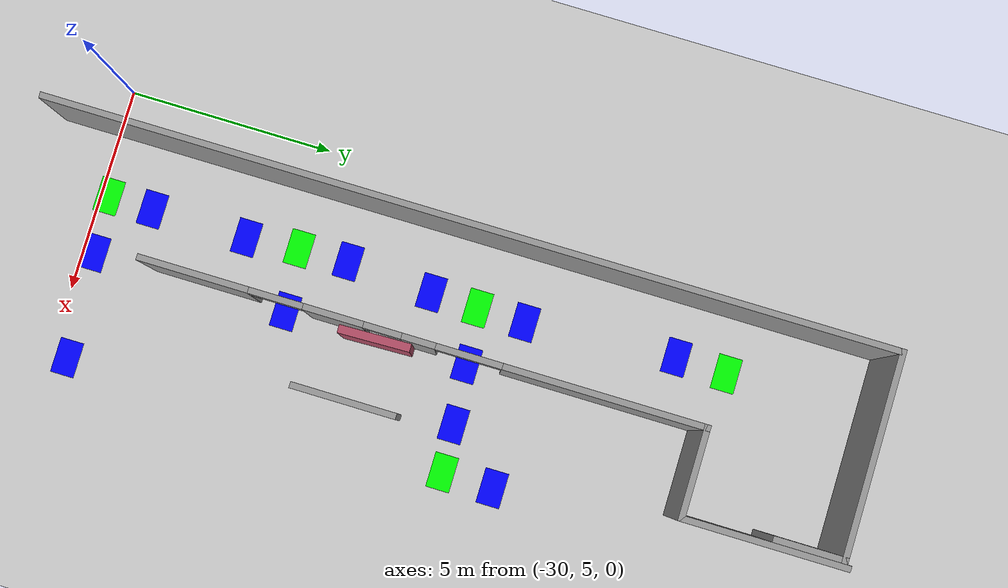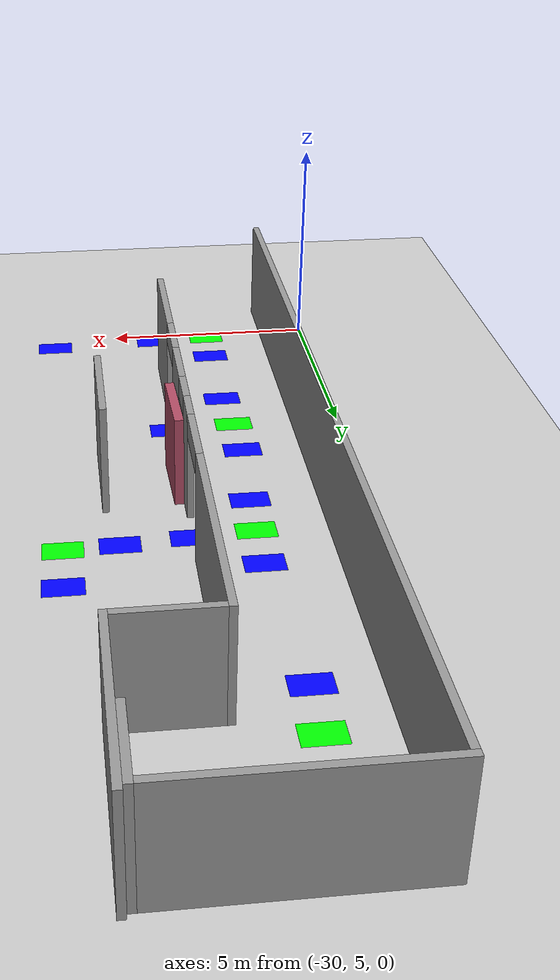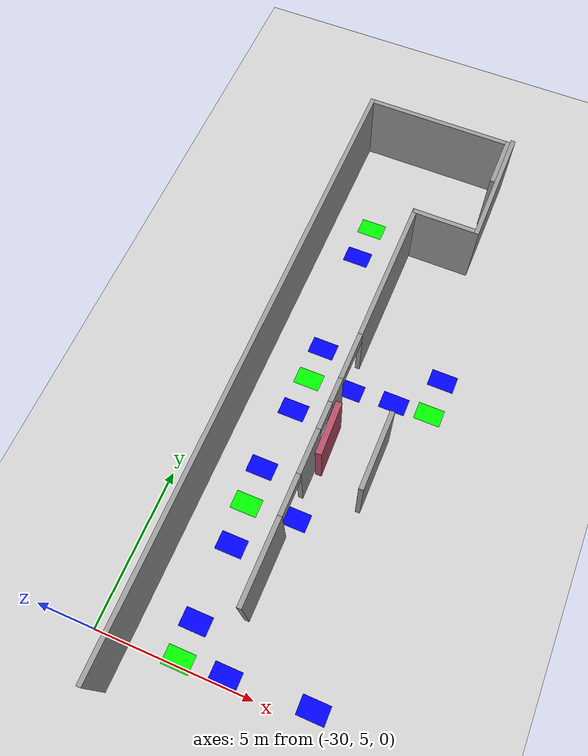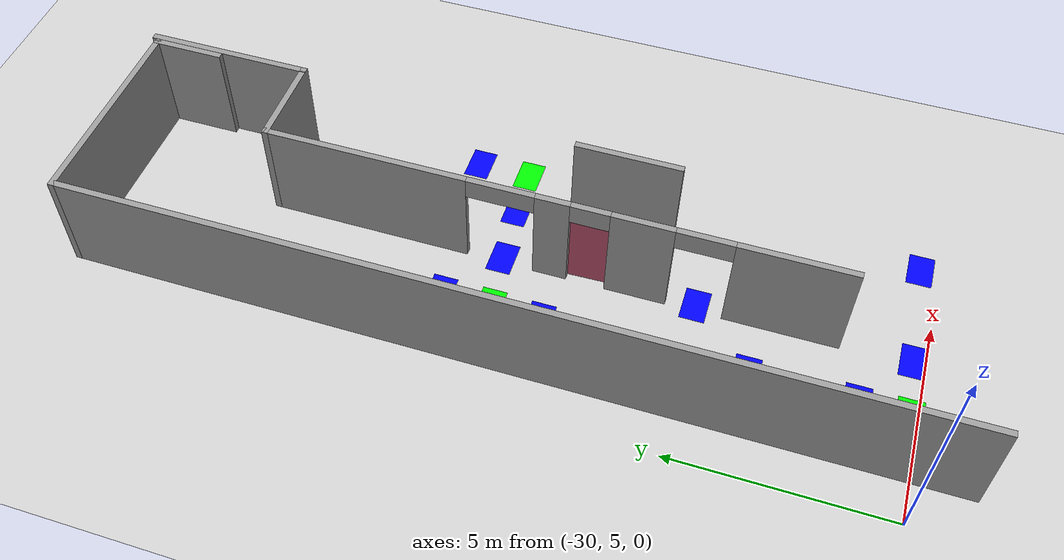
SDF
<sdf version="1.6">
 <world name="default">
  <model name="ground_plane">
   <pose>0 0 0.001 0 -0 0</pose>
   <static>1</static>
   <link name="link">
    <collision name="collision">
     <geometry><plane><normal>0 0 1</normal><size>100 100</size></plane></geometry>
     <surface><friction><ode><mu>100</mu><mu2>50</mu2></ode></friction></surface>
    </collision>
    <visual name="visual">
     <cast_shadows>0</cast_shadows>
     <geometry><plane><normal>0 0 1</normal><size>100 100</size></plane></geometry>
     <material>
      <script><uri>file://media/materials/scripts/gazebo.material</uri><name>Gazebo/Grey</name></script>
     </material>
    </visual>
   </link>
  </model>
  <model name="intersection_0">
   <link name="link">
    <pose>0 0 0.001 0 -0 0</pose>
    <inertial>
     <mass>0.0352517</mass>
     <inertia>
      <ixx>0.000997067</ixx>
      <ixy>0</ixy>
      <ixz>0</ixz>
      <iyy>0.00220147</iyy>
      <iyz>0</iyz>
      <izz>0.0031692</izz>
     </inertia>
     <pose>0 0 0.001 0 -0 0</pose>
    </inertial>
    <visual name="visual">
     <geometry><box><size>0.862743 0.578289 1e-06</size></box></geometry>
     <material>
      <script><name>Gazebo/Grey</name><uri>file://media/materials/scripts/gazebo.material</uri></script>
      <ambient>0 0 1 1</ambient>
      <diffuse>0 0 1 1</diffuse>
      <specular>0 0 1 1</specular>
      <emissive>0 0 1 1</emissive>
      <shader type="vertex"><normal_map>__default__</normal_map></shader>
     </material>
     <pose>0 0 0.001 0 -0 0</pose>
    </visual>
    <collision name="collision">
     <pose>0 0 0.001 0 -0 0</pose>
     <geometry><box><size>0.862743 0.578289 0.000477</size></box></geometry>
     <surface>
      <friction>
       <ode><mu>1</mu><mu2>1</mu2><fdir1>0 0 0</fdir1><slip1>0</slip1><slip2>0</slip2></ode>
       <torsional>
        <coefficient>1</coefficient>
        <patch_radius>0</patch_radius>
        <surface_radius>0</surface_radius>
        <use_patch_radius>1</use_patch_radius>
        <ode><slip>0</slip></ode>
       </torsional>
      </friction>
      <bounce><restitution_coefficient>0</restitution_coefficient><threshold>1e+06</threshold></bounce>
      <contact>
       <collide_without_contact>0</collide_without_contact>
       <collide_without_contact_bitmask>1</collide_without_contact_bitmask>
       <collide_bitmask>1</collide_bitmask>
       <ode>
        <soft_cfm>0</soft_cfm>
        <soft_erp>0.2</soft_erp>
        <kp>1e+13</kp>
        <kd>1</kd>
        <max_vel>0.01</max_vel>
        <min_depth>0</min_depth>
       </ode>
       <bullet>
        <split_impulse>1</split_impulse>
        <split_impulse_penetration_threshold>-0.01</split_impulse_penetration_threshold>
        <soft_cfm>0</soft_cfm>
        <soft_erp>0.2</soft_erp>
        <kp>1e+13</kp>
        <kd>1</kd>
       </bullet>
      </contact>
     </surface>
    </collision>
   </link>
   <static>1</static>
   <pose>-25.9503 10.1367 0 0 -0 0</pose>
  </model>
  <model name="intersection_2">
   <link name="link">
    <pose>0 0 0.001 0 -0 0</pose>
    <inertial>
     <mass>0.0352517</mass>
     <inertia>
      <ixx>0.000997067</ixx>
      <ixy>0</ixy>
      <ixz>0</ixz>
      <iyy>0.00220147</iyy>
      <iyz>0</iyz>
      <izz>0.0031692</izz>
     </inertia>
     <pose>0 0 0.001 0 -0 0</pose>
    </inertial>
    <visual name="visual">
     <geometry><box><size>0.862743 0.578289 1e-06</size></box></geometry>
     <material>
      <script><name>Gazebo/Grey</name><uri>file://media/materials/scripts/gazebo.material</uri></script>
      <ambient>0 0 1 1</ambient>
      <diffuse>0 0 1 1</diffuse>
      <specular>0 0 1 1</specular>
      <emissive>0 0 1 1</emissive>
      <shader type="vertex"><normal_map>__default__</normal_map></shader>
     </material>
     <pose>0 0 0.001 0 -0 0</pose>
    </visual>
    <collision name="collision">
     <pose>0 0 0.001 0 -0 0</pose>
     <geometry><box><size>0.862743 0.578289 0.000477</size></box></geometry>
     <surface>
      <friction>
       <ode><mu>1</mu><mu2>1</mu2><fdir1>0 0 0</fdir1><slip1>0</slip1><slip2>0</slip2></ode>
       <torsional>
        <coefficient>1</coefficient>
        <patch_radius>0</patch_radius>
        <surface_radius>0</surface_radius>
        <use_patch_radius>1</use_patch_radius>
        <ode><slip>0</slip></ode>
       </torsional>
      </friction>
      <bounce><restitution_coefficient>0</restitution_coefficient><threshold>1e+06</threshold></bounce>
      <contact>
       <collide_without_contact>0</collide_without_contact>
       <collide_without_contact_bitmask>1</collide_without_contact_bitmask>
       <collide_bitmask>1</collide_bitmask>
       <ode>
        <soft_cfm>0</soft_cfm>
        <soft_erp>0.2</soft_erp>
        <kp>1e+13</kp>
        <kd>1</kd>
        <max_vel>0.01</max_vel>
        <min_depth>0</min_depth>
       </ode>
       <bullet>
        <split_impulse>1</split_impulse>
        <split_impulse_penetration_threshold>-0.01</split_impulse_penetration_threshold>
        <soft_cfm>0</soft_cfm>
        <soft_erp>0.2</soft_erp>
        <kp>1e+13</kp>
        <kd>1</kd>
       </bullet>
      </contact>
     </surface>
    </collision>
   </link>
   <static>1</static>
   <pose>-25.9861 5.27466 0 0 -0 0</pose>
  </model>
  <model name="intersection_3">
   <link name="link">
    <pose>0 0 0.001 0 -0 0</pose>
    <inertial>
     <mass>0.0352517</mass>
     <inertia>
      <ixx>0.000997067</ixx>
      <ixy>0</ixy>
      <ixz>0</ixz>
      <iyy>0.00220147</iyy>
      <iyz>0</iyz>
      <izz>0.0031692</izz>
     </inertia>
     <pose>0 0 0.001 0 -0 0</pose>
    </inertial>
    <visual name="visual">
     <geometry><box><size>0.862743 0.578289 1e-06</size></box></geometry>
     <material>
      <script><name>Gazebo/Grey</name><uri>file://media/materials/scripts/gazebo.material</uri></script>
      <ambient>0 0 1 1</ambient>
      <diffuse>0 0 1 1</diffuse>
      <specular>0 0 1 1</specular>
      <emissive>0 0 1 1</emissive>
      <shader type="vertex"><normal_map>__default__</normal_map></shader>
     </material>
     <pose>0 0 0.001 0 -0 0</pose>
    </visual>
    <collision name="collision">
     <pose>0 0 0.001 0 -0 0</pose>
     <geometry><box><size>0.862743 0.578289 0.000477</size></box></geometry>
     <surface>
      <friction>
       <ode><mu>1</mu><mu2>1</mu2><fdir1>0 0 0</fdir1><slip1>0</slip1><slip2>0</slip2></ode>
       <torsional>
        <coefficient>1</coefficient>
        <patch_radius>0</patch_radius>
        <surface_radius>0</surface_radius>
        <use_patch_radius>1</use_patch_radius>
        <ode><slip>0</slip></ode>
       </torsional>
      </friction>
      <bounce><restitution_coefficient>0</restitution_coefficient><threshold>1e+06</threshold></bounce>
      <contact>
       <collide_without_contact>0</collide_without_contact>
       <collide_without_contact_bitmask>1</collide_without_contact_bitmask>
       <collide_bitmask>1</collide_bitmask>
       <ode>
        <soft_cfm>0</soft_cfm>
        <soft_erp>0.2</soft_erp>
        <kp>1e+13</kp>
        <kd>1</kd>
        <max_vel>0.01</max_vel>
        <min_depth>0</min_depth>
       </ode>
       <bullet>
        <split_impulse>1</split_impulse>
        <split_impulse_penetration_threshold>-0.01</split_impulse_penetration_threshold>
        <soft_cfm>0</soft_cfm>
        <soft_erp>0.2</soft_erp>
        <kp>1e+13</kp>
        <kd>1</kd>
       </bullet>
      </contact>
     </surface>
    </collision>
   </link>
   <static>1</static>
   <pose>-23.319 16.1375 0 0 -0 0</pose>
  </model>
  <model name="doorOutside_2_clone">
   <link name="link">
    <pose>0.155539 -0.366282 0.216958 0 -0 0</pose>
    <inertial>
     <mass>2.13199</mass>
     <inertia>
      <ixx>0.452656</ixx>
      <ixy>0</ixy>
      <ixz>0</ixz>
      <iyy>0.796738</iyy>
      <iyz>0</iyz>
      <izz>0.699414</izz>
     </inertia>
     <pose>0 0 0.001 0 -0 0</pose>
    </inertial>
    <visual name="visual">
     <geometry><box><size>1.71368 0.198843 2.05986</size></box></geometry>
     <material>
      <script><name>Gazebo/Grey</name><uri>file://media/materials/scripts/gazebo.material</uri></script>
      <ambient>0.7 0.3 0.4 1</ambient>
      <diffuse>0.7 0.7 0.7 1</diffuse>
      <specular>0.01 0.01 0.01 1</specular>
      <emissive>0 0 0 1</emissive>
      <shader type="vertex"><normal_map>__default__</normal_map></shader>
      <lighting>0</lighting>
     </material>
     <pose>0 0 0.001 0 -0 0</pose>
    </visual>
    <collision name="collision">
     <pose>0 0 0.001 0 -0 0</pose>
     <geometry><box><size>1.71368 0.198843 2.05986</size></box></geometry>
     <surface>
      <friction>
       <ode><mu>1</mu><mu2>1</mu2><fdir1>0 0 0</fdir1><slip1>0</slip1><slip2>0</slip2></ode>
       <torsional>
        <coefficient>1</coefficient>
        <patch_radius>0</patch_radius>
        <surface_radius>0</surface_radius>
        <use_patch_radius>1</use_patch_radius>
        <ode><slip>0</slip></ode>
       </torsional>
      </friction>
      <bounce><restitution_coefficient>0</restitution_coefficient><threshold>1e+06</threshold></bounce>
      <contact>
       <collide_without_contact>0</collide_without_contact>
       <collide_without_contact_bitmask>1</collide_without_contact_bitmask>
       <collide_bitmask>1</collide_bitmask>
       <ode>
        <soft_cfm>0</soft_cfm>
        <soft_erp>0.2</soft_erp>
        <kp>1e+13</kp>
        <kd>1</kd>
        <max_vel>0.01</max_vel>
        <min_depth>0</min_depth>
       </ode>
       <bullet>
        <split_impulse>1</split_impulse>
        <split_impulse_penetration_threshold>-0.01</split_impulse_penetration_threshold>
        <soft_cfm>0</soft_cfm>
        <soft_erp>0.2</soft_erp>
        <kp>1e+13</kp>
        <kd>1</kd>
       </bullet>
      </contact>
     </surface>
    </collision>
   </link>
   <static>0</static>
   <pose>-26.2145 12.3645 0.811972 0 -0 1.59763</pose>
  </model>
  <model name="corridor">
   <link name="link">
    <pose>0 0 0.001 0 -0 0</pose>
    <inertial>
     <mass>0.0352517</mass>
     <inertia>
      <ixx>0.00099707</ixx>
      <ixy>0</ixy>
      <ixz>0</ixz>
      <iyy>0.00220147</iyy>
      <iyz>0</iyz>
      <izz>0.0031692</izz>
     </inertia>
     <pose>0 0 0.001 0 -0 0</pose>
    </inertial>
    <visual name="visual">
     <geometry><box><size>0.862743 0.578289 1e-06</size></box></geometry>
     <material>
      <script><name>Gazebo/Grey</name><uri>file://media/materials/scripts/gazebo.material</uri></script>
      <ambient>0 1 0 1</ambient>
      <diffuse>0 1 0 1</diffuse>
      <specular>0 1 0 1</specular>
      <emissive>0 1 0 1</emissive>
      <shader type="vertex"><normal_map>__default__</normal_map></shader>
     </material>
     <pose>0 0 0.001 0 -0 0</pose>
    </visual>
    <collision name="collision">
     <pose>0 0 0.001 0 -0 0</pose>
     <geometry><box><size>0.862743 0.578289 0.000477</size></box></geometry>
     <surface>
      <friction>
       <ode><mu>1</mu><mu2>1</mu2><fdir1>0 0 0</fdir1><slip1>0</slip1><slip2>0</slip2></ode>
       <torsional>
        <coefficient>1</coefficient>
        <patch_radius>0</patch_radius>
        <surface_radius>0</surface_radius>
        <use_patch_radius>1</use_patch_radius>
        <ode><slip>0</slip></ode>
       </torsional>
      </friction>
      <bounce><restitution_coefficient>0</restitution_coefficient><threshold>1e+06</threshold></bounce>
      <contact>
       <collide_without_contact>0</collide_without_contact>
       <collide_without_contact_bitmask>1</collide_without_contact_bitmask>
       <collide_bitmask>1</collide_bitmask>
       <ode>
        <soft_cfm>0</soft_cfm>
        <soft_erp>0.2</soft_erp>
        <kp>1e+13</kp>
        <kd>1</kd>
        <max_vel>0.01</max_vel>
        <min_depth>0</min_depth>
       </ode>
       <bullet>
        <split_impulse>1</split_impulse>
        <split_impulse_penetration_threshold>-0.01</split_impulse_penetration_threshold>
        <soft_cfm>0</soft_cfm>
        <soft_erp>0.2</soft_erp>
        <kp>1e+13</kp>
        <kd>1</kd>
       </bullet>
      </contact>
     </surface>
    </collision>
   </link>
   <static>1</static>
   <pose>-27.5631 20.7542 0 0 -0 0</pose>
  </model>
  <model name="corridor_0">
   <link name="link">
    <pose>0 0 0.001 0 -0 0</pose>
    <inertial>
     <mass>0.0352517</mass>
     <inertia>
      <ixx>0.00099707</ixx>
      <ixy>0</ixy>
      <ixz>0</ixz>
      <iyy>0.00220147</iyy>
      <iyz>0</iyz>
      <izz>0.0031692</izz>
     </inertia>
     <pose>0 0 0.001 0 -0 0</pose>
    </inertial>
    <visual name="visual">
     <geometry><box><size>0.862743 0.578289 1e-06</size></box></geometry>
     <material>
      <script><name>Gazebo/Grey</name><uri>file://media/materials/scripts/gazebo.material</uri></script>
      <ambient>0 1 0 1</ambient>
      <diffuse>0 1 0 1</diffuse>
      <specular>0 1 0 1</specular>
      <emissive>0 1 0 1</emissive>
      <shader type="vertex"><normal_map>__default__</normal_map></shader>
     </material>
     <pose>0 0 0.001 0 -0 0</pose>
    </visual>
    <collision name="collision">
     <pose>0 0 0.001 0 -0 0</pose>
     <geometry><box><size>0.862743 0.578289 0.000477</size></box></geometry>
     <surface>
      <friction>
       <ode><mu>1</mu><mu2>1</mu2><fdir1>0 0 0</fdir1><slip1>0</slip1><slip2>0</slip2></ode>
       <torsional>
        <coefficient>1</coefficient>
        <patch_radius>0</patch_radius>
        <surface_radius>0</surface_radius>
        <use_patch_radius>1</use_patch_radius>
        <ode><slip>0</slip></ode>
       </torsional>
      </friction>
      <bounce><restitution_coefficient>0</restitution_coefficient><threshold>1e+06</threshold></bounce>
      <contact>
       <collide_without_contact>0</collide_without_contact>
       <collide_without_contact_bitmask>1</collide_without_contact_bitmask>
       <collide_bitmask>1</collide_bitmask>
       <ode>
        <soft_cfm>0</soft_cfm>
        <soft_erp>0.2</soft_erp>
        <kp>1e+13</kp>
        <kd>1</kd>
        <max_vel>0.01</max_vel>
        <min_depth>0</min_depth>
       </ode>
       <bullet>
        <split_impulse>1</split_impulse>
        <split_impulse_penetration_threshold>-0.01</split_impulse_penetration_threshold>
        <soft_cfm>0</soft_cfm>
        <soft_erp>0.2</soft_erp>
        <kp>1e+13</kp>
        <kd>1</kd>
       </bullet>
      </contact>
     </surface>
    </collision>
   </link>
   <static>1</static>
   <pose>-27.3637 14.5565 0 0 -0 0</pose>
  </model>
  <model name="corridor_1">
   <link name="link">
    <pose>0 0 0.001 0 -0 0</pose>
    <inertial>
     <mass>0.0352517</mass>
     <inertia>
      <ixx>0.00099707</ixx>
      <ixy>0</ixy>
      <ixz>0</ixz>
      <iyy>0.00220147</iyy>
      <iyz>0</iyz>
      <izz>0.0031692</izz>
     </inertia>
     <pose>0 0 0.001 0 -0 0</pose>
    </inertial>
    <visual name="visual">
     <geometry><box><size>0.862743 0.578289 1e-06</size></box></geometry>
     <material>
      <script><name>Gazebo/Grey</name><uri>file://media/materials/scripts/gazebo.material</uri></script>
      <ambient>0 1 0 1</ambient>
      <diffuse>0 1 0 1</diffuse>
      <specular>0 1 0 1</specular>
      <emissive>0 1 0 1</emissive>
      <shader type="vertex"><normal_map>__default__</normal_map></shader>
     </material>
     <pose>0 0 0.001 0 -0 0</pose>
    </visual>
    <collision name="collision">
     <pose>0 0 0.001 0 -0 0</pose>
     <geometry><box><size>0.862743 0.578289 0.000477</size></box></geometry>
     <surface>
      <friction>
       <ode><mu>1</mu><mu2>1</mu2><fdir1>0 0 0</fdir1><slip1>0</slip1><slip2>0</slip2></ode>
       <torsional>
        <coefficient>1</coefficient>
        <patch_radius>0</patch_radius>
        <surface_radius>0</surface_radius>
        <use_patch_radius>1</use_patch_radius>
        <ode><slip>0</slip></ode>
       </torsional>
      </friction>
      <bounce><restitution_coefficient>0</restitution_coefficient><threshold>1e+06</threshold></bounce>
      <contact>
       <collide_without_contact>0</collide_without_contact>
       <collide_without_contact_bitmask>1</collide_without_contact_bitmask>
       <collide_bitmask>1</collide_bitmask>
       <ode>
        <soft_cfm>0</soft_cfm>
        <soft_erp>0.2</soft_erp>
        <kp>1e+13</kp>
        <kd>1</kd>
        <max_vel>0.01</max_vel>
        <min_depth>0</min_depth>
       </ode>
       <bullet>
        <split_impulse>1</split_impulse>
        <split_impulse_penetration_threshold>-0.01</split_impulse_penetration_threshold>
        <soft_cfm>0</soft_cfm>
        <soft_erp>0.2</soft_erp>
        <kp>1e+13</kp>
        <kd>1</kd>
       </bullet>
      </contact>
     </surface>
    </collision>
   </link>
   <static>1</static>
   <pose>-27.5054 9.99894 0 0 -0 0</pose>
  </model>
  <model name="corridor_2">
   <link name="link">
    <pose>0 0 0.001 0 -0 0</pose>
    <inertial>
     <mass>0.0352517</mass>
     <inertia>
      <ixx>0.00099707</ixx>
      <ixy>0</ixy>
      <ixz>0</ixz>
      <iyy>0.00220147</iyy>
      <iyz>0</iyz>
      <izz>0.0031692</izz>
     </inertia>
     <pose>0 0 0.001 0 -0 0</pose>
    </inertial>
    <visual name="visual">
     <geometry><box><size>0.862743 0.578289 1e-06</size></box></geometry>
     <material>
      <script><name>Gazebo/Grey</name><uri>file://media/materials/scripts/gazebo.material</uri></script>
      <ambient>0 1 0 1</ambient>
      <diffuse>0 1 0 1</diffuse>
      <specular>0 1 0 1</specular>
      <emissive>0 1 0 1</emissive>
      <shader type="vertex"><normal_map>__default__</normal_map></shader>
     </material>
     <pose>0 0 0.001 0 -0 0</pose>
    </visual>
    <collision name="collision">
     <pose>0 0 0.001 0 -0 0</pose>
     <geometry><box><size>0.862743 0.578289 0.000477</size></box></geometry>
     <surface>
      <friction>
       <ode><mu>1</mu><mu2>1</mu2><fdir1>0 0 0</fdir1><slip1>0</slip1><slip2>0</slip2></ode>
       <torsional>
        <coefficient>1</coefficient>
        <patch_radius>0</patch_radius>
        <surface_radius>0</surface_radius>
        <use_patch_radius>1</use_patch_radius>
        <ode><slip>0</slip></ode>
       </torsional>
      </friction>
      <bounce><restitution_coefficient>0</restitution_coefficient><threshold>1e+06</threshold></bounce>
      <contact>
       <collide_without_contact>0</collide_without_contact>
       <collide_without_contact_bitmask>1</collide_without_contact_bitmask>
       <collide_bitmask>1</collide_bitmask>
       <ode>
        <soft_cfm>0</soft_cfm>
        <soft_erp>0.2</soft_erp>
        <kp>1e+13</kp>
        <kd>1</kd>
        <max_vel>0.01</max_vel>
        <min_depth>0</min_depth>
       </ode>
       <bullet>
        <split_impulse>1</split_impulse>
        <split_impulse_penetration_threshold>-0.01</split_impulse_penetration_threshold>
        <soft_cfm>0</soft_cfm>
        <soft_erp>0.2</soft_erp>
        <kp>1e+13</kp>
        <kd>1</kd>
       </bullet>
      </contact>
     </surface>
    </collision>
   </link>
   <static>1</static>
   <pose>-27.4044 5.18807 0 0 -0 0</pose>
  </model>
  <model name="corridor_22">
   <link name="link">
    <pose>0 0 0.001 0 -0 0</pose>
    <inertial>
     <mass>0.0352517</mass>
     <inertia>
      <ixx>0.00099707</ixx>
      <ixy>0</ixy>
      <ixz>0</ixz>
      <iyy>0.00220147</iyy>
      <iyz>0</iyz>
      <izz>0.0031692</izz>
     </inertia>
     <pose>0 0 0.001 0 -0 0</pose>
    </inertial>
    <visual name="visual">
     <geometry><box><size>0.862743 0.578289 1e-06</size></box></geometry>
     <material>
      <script><name>Gazebo/Grey</name><uri>file://media/materials/scripts/gazebo.material</uri></script>
      <ambient>0 1 0 1</ambient>
      <diffuse>0 1 0 1</diffuse>
      <specular>0 1 0 1</specular>
      <emissive>0 1 0 1</emissive>
      <shader type="vertex"><normal_map>__default__</normal_map></shader>
     </material>
     <pose>0 0 0.001 0 -0 0</pose>
    </visual>
    <collision name="collision">
     <pose>0 0 0.001 0 -0 0</pose>
     <geometry><box><size>0.862743 0.578289 0.000477</size></box></geometry>
     <surface>
      <friction>
       <ode><mu>1</mu><mu2>1</mu2><fdir1>0 0 0</fdir1><slip1>0</slip1><slip2>0</slip2></ode>
       <torsional>
        <coefficient>1</coefficient>
        <patch_radius>0</patch_radius>
        <surface_radius>0</surface_radius>
        <use_patch_radius>1</use_patch_radius>
        <ode><slip>0</slip></ode>
       </torsional>
      </friction>
      <bounce><restitution_coefficient>0</restitution_coefficient><threshold>1e+06</threshold></bounce>
      <contact>
       <collide_without_contact>0</collide_without_contact>
       <collide_without_contact_bitmask>1</collide_without_contact_bitmask>
       <collide_bitmask>1</collide_bitmask>
       <ode>
        <soft_cfm>0</soft_cfm>
        <soft_erp>0.2</soft_erp>
        <kp>1e+13</kp>
        <kd>1</kd>
        <max_vel>0.01</max_vel>
        <min_depth>0</min_depth>
       </ode>
       <bullet>
        <split_impulse>1</split_impulse>
        <split_impulse_penetration_threshold>-0.01</split_impulse_penetration_threshold>
        <soft_cfm>0</soft_cfm>
        <soft_erp>0.2</soft_erp>
        <kp>1e+13</kp>
        <kd>1</kd>
       </bullet>
      </contact>
     </surface>
    </collision>
   </link>
   <static>1</static>
   <pose>-23.3369 14.8778 0 0 -0 0</pose>
  </model>
  <model name="intersection_28">
   <link name="link">
    <pose>0 0 0.001 0 -0 0</pose>
    <inertial>
     <mass>0.0352517</mass>
     <inertia>
      <ixx>0.000997067</ixx>
      <ixy>0</ixy>
      <ixz>0</ixz>
      <iyy>0.00220147</iyy>
      <iyz>0</iyz>
      <izz>0.0031692</izz>
     </inertia>
     <pose>0 0 0.001 0 -0 0</pose>
    </inertial>
    <visual name="visual">
     <geometry><box><size>0.862743 0.578289 1e-06</size></box></geometry>
     <material>
      <script><name>Gazebo/Grey</name><uri>file://media/materials/scripts/gazebo.material</uri></script>
      <ambient>0 0 1 1</ambient>
      <diffuse>0 0 1 1</diffuse>
      <specular>0 0 1 1</specular>
      <emissive>0 0 1 1</emissive>
      <shader type="vertex"><normal_map>__default__</normal_map></shader>
     </material>
     <pose>0 0 0.001 0 -0 0</pose>
    </visual>
    <collision name="collision">
     <pose>0 0 0.001 0 -0 0</pose>
     <geometry><box><size>0.862743 0.578289 0.000477</size></box></geometry>
     <surface>
      <friction>
       <ode><mu>1</mu><mu2>1</mu2><fdir1>0 0 0</fdir1><slip1>0</slip1><slip2>0</slip2></ode>
       <torsional>
        <coefficient>1</coefficient>
        <patch_radius>0</patch_radius>
        <surface_radius>0</surface_radius>
        <use_patch_radius>1</use_patch_radius>
        <ode><slip>0</slip></ode>
       </torsional>
      </friction>
      <bounce><restitution_coefficient>0</restitution_coefficient><threshold>1e+06</threshold></bounce>
      <contact>
       <collide_without_contact>0</collide_without_contact>
       <collide_without_contact_bitmask>1</collide_without_contact_bitmask>
       <collide_bitmask>1</collide_bitmask>
       <ode>
        <soft_cfm>0</soft_cfm>
        <soft_erp>0.2</soft_erp>
        <kp>1e+13</kp>
        <kd>1</kd>
        <max_vel>0.01</max_vel>
        <min_depth>0</min_depth>
       </ode>
       <bullet>
        <split_impulse>1</split_impulse>
        <split_impulse_penetration_threshold>-0.01</split_impulse_penetration_threshold>
        <soft_cfm>0</soft_cfm>
        <soft_erp>0.2</soft_erp>
        <kp>1e+13</kp>
        <kd>1</kd>
       </bullet>
      </contact>
     </surface>
    </collision>
   </link>
   <static>1</static>
   <pose>-27.5459 11.2292 0 0 -0 0</pose>
  </model>
  <model name="intersection_29">
   <link name="link">
    <pose>0 0 0.001 0 -0 0</pose>
    <inertial>
     <mass>0.0352517</mass>
     <inertia>
      <ixx>0.000997067</ixx>
      <ixy>0</ixy>
      <ixz>0</ixz>
      <iyy>0.00220147</iyy>
      <iyz>0</iyz>
      <izz>0.0031692</izz>
     </inertia>
     <pose>0 0 0.001 0 -0 0</pose>
    </inertial>
    <visual name="visual">
     <geometry><box><size>0.862743 0.578289 1e-06</size></box></geometry>
     <material>
      <script><name>Gazebo/Grey</name><uri>file://media/materials/scripts/gazebo.material</uri></script>
      <ambient>0 0 1 1</ambient>
      <diffuse>0 0 1 1</diffuse>
      <specular>0 0 1 1</specular>
      <emissive>0 0 1 1</emissive>
      <shader type="vertex"><normal_map>__default__</normal_map></shader>
     </material>
     <pose>0 0 0.001 0 -0 0</pose>
    </visual>
    <collision name="collision">
     <pose>0 0 0.001 0 -0 0</pose>
     <geometry><box><size>0.862743 0.578289 0.000477</size></box></geometry>
     <surface>
      <friction>
       <ode><mu>1</mu><mu2>1</mu2><fdir1>0 0 0</fdir1><slip1>0</slip1><slip2>0</slip2></ode>
       <torsional>
        <coefficient>1</coefficient>
        <patch_radius>0</patch_radius>
        <surface_radius>0</surface_radius>
        <use_patch_radius>1</use_patch_radius>
        <ode><slip>0</slip></ode>
       </torsional>
      </friction>
      <bounce><restitution_coefficient>0</restitution_coefficient><threshold>1e+06</threshold></bounce>
      <contact>
       <collide_without_contact>0</collide_without_contact>
       <collide_without_contact_bitmask>1</collide_without_contact_bitmask>
       <collide_bitmask>1</collide_bitmask>
       <ode>
        <soft_cfm>0</soft_cfm>
        <soft_erp>0.2</soft_erp>
        <kp>1e+13</kp>
        <kd>1</kd>
        <max_vel>0.01</max_vel>
        <min_depth>0</min_depth>
       </ode>
       <bullet>
        <split_impulse>1</split_impulse>
        <split_impulse_penetration_threshold>-0.01</split_impulse_penetration_threshold>
        <soft_cfm>0</soft_cfm>
        <soft_erp>0.2</soft_erp>
        <kp>1e+13</kp>
        <kd>1</kd>
       </bullet>
      </contact>
     </surface>
    </collision>
   </link>
   <static>1</static>
   <pose>-27.4019 13.3774 0 0 -0 0</pose>
  </model>
  <model name="intersection_30">
   <link name="link">
    <pose>0 0 0.001 0 -0 0</pose>
    <inertial>
     <mass>0.0352517</mass>
     <inertia>
      <ixx>0.000997067</ixx>
      <ixy>0</ixy>
      <ixz>0</ixz>
      <iyy>0.00220147</iyy>
      <iyz>0</iyz>
      <izz>0.0031692</izz>
     </inertia>
     <pose>0 0 0.001 0 -0 0</pose>
    </inertial>
    <visual name="visual">
     <geometry><box><size>0.862743 0.578289 1e-06</size></box></geometry>
     <material>
      <script><name>Gazebo/Grey</name><uri>file://media/materials/scripts/gazebo.material</uri></script>
      <ambient>0 0 1 1</ambient>
      <diffuse>0 0 1 1</diffuse>
      <specular>0 0 1 1</specular>
      <emissive>0 0 1 1</emissive>
      <shader type="vertex"><normal_map>__default__</normal_map></shader>
     </material>
     <pose>0 0 0.001 0 -0 0</pose>
    </visual>
    <collision name="collision">
     <pose>0 0 0.001 0 -0 0</pose>
     <geometry><box><size>0.862743 0.578289 0.000477</size></box></geometry>
     <surface>
      <friction>
       <ode><mu>1</mu><mu2>1</mu2><fdir1>0 0 0</fdir1><slip1>0</slip1><slip2>0</slip2></ode>
       <torsional>
        <coefficient>1</coefficient>
        <patch_radius>0</patch_radius>
        <surface_radius>0</surface_radius>
        <use_patch_radius>1</use_patch_radius>
        <ode><slip>0</slip></ode>
       </torsional>
      </friction>
      <bounce><restitution_coefficient>0</restitution_coefficient><threshold>1e+06</threshold></bounce>
      <contact>
       <collide_without_contact>0</collide_without_contact>
       <collide_without_contact_bitmask>1</collide_without_contact_bitmask>
       <collide_bitmask>1</collide_bitmask>
       <ode>
        <soft_cfm>0</soft_cfm>
        <soft_erp>0.2</soft_erp>
        <kp>1e+13</kp>
        <kd>1</kd>
        <max_vel>0.01</max_vel>
        <min_depth>0</min_depth>
       </ode>
       <bullet>
        <split_impulse>1</split_impulse>
        <split_impulse_penetration_threshold>-0.01</split_impulse_penetration_threshold>
        <soft_cfm>0</soft_cfm>
        <soft_erp>0.2</soft_erp>
        <kp>1e+13</kp>
        <kd>1</kd>
       </bullet>
      </contact>
     </surface>
    </collision>
   </link>
   <static>1</static>
   <pose>-27.3948 8.69379 0 0 -0 0</pose>
  </model>
  <model name="intersection_31">
   <link name="link">
    <pose>0 0 0.001 0 -0 0</pose>
    <inertial>
     <mass>0.0352517</mass>
     <inertia>
      <ixx>0.000997067</ixx>
      <ixy>0</ixy>
      <ixz>0</ixz>
      <iyy>0.00220147</iyy>
      <iyz>0</iyz>
      <izz>0.0031692</izz>
     </inertia>
     <pose>0 0 0.001 0 -0 0</pose>
    </inertial>
    <visual name="visual">
     <geometry><box><size>0.862743 0.578289 1e-06</size></box></geometry>
     <material>
      <script><name>Gazebo/Grey</name><uri>file://media/materials/scripts/gazebo.material</uri></script>
      <ambient>0 0 1 1</ambient>
      <diffuse>0 0 1 1</diffuse>
      <specular>0 0 1 1</specular>
      <emissive>0 0 1 1</emissive>
      <shader type="vertex"><normal_map>__default__</normal_map></shader>
     </material>
     <pose>0 0 0.001 0 -0 0</pose>
    </visual>
    <collision name="collision">
     <pose>0 0 0.001 0 -0 0</pose>
     <geometry><box><size>0.862743 0.578289 0.000477</size></box></geometry>
     <surface>
      <friction>
       <ode><mu>1</mu><mu2>1</mu2><fdir1>0 0 0</fdir1><slip1>0</slip1><slip2>0</slip2></ode>
       <torsional>
        <coefficient>1</coefficient>
        <patch_radius>0</patch_radius>
        <surface_radius>0</surface_radius>
        <use_patch_radius>1</use_patch_radius>
        <ode><slip>0</slip></ode>
       </torsional>
      </friction>
      <bounce><restitution_coefficient>0</restitution_coefficient><threshold>1e+06</threshold></bounce>
      <contact>
       <collide_without_contact>0</collide_without_contact>
       <collide_without_contact_bitmask>1</collide_without_contact_bitmask>
       <collide_bitmask>1</collide_bitmask>
       <ode>
        <soft_cfm>0</soft_cfm>
        <soft_erp>0.2</soft_erp>
        <kp>1e+13</kp>
        <kd>1</kd>
        <max_vel>0.01</max_vel>
        <min_depth>0</min_depth>
       </ode>
       <bullet>
        <split_impulse>1</split_impulse>
        <split_impulse_penetration_threshold>-0.01</split_impulse_penetration_threshold>
        <soft_cfm>0</soft_cfm>
        <soft_erp>0.2</soft_erp>
        <kp>1e+13</kp>
        <kd>1</kd>
       </bullet>
      </contact>
     </surface>
    </collision>
   </link>
   <static>1</static>
   <pose>-27.3561 15.7457 0 0 -0 0</pose>
  </model>
  <model name="intersection_32">
   <link name="link">
    <pose>0 0 0.001 0 -0 0</pose>
    <inertial>
     <mass>0.0352517</mass>
     <inertia>
      <ixx>0.000997067</ixx>
      <ixy>0</ixy>
      <ixz>0</ixz>
      <iyy>0.00220147</iyy>
      <iyz>0</iyz>
      <izz>0.0031692</izz>
     </inertia>
     <pose>0 0 0.001 0 -0 0</pose>
    </inertial>
    <visual name="visual">
     <geometry><box><size>0.862743 0.578289 1e-06</size></box></geometry>
     <material>
      <script><name>Gazebo/Grey</name><uri>file://media/materials/scripts/gazebo.material</uri></script>
      <ambient>0 0 1 1</ambient>
      <diffuse>0 0 1 1</diffuse>
      <specular>0 0 1 1</specular>
      <emissive>0 0 1 1</emissive>
      <shader type="vertex"><normal_map>__default__</normal_map></shader>
     </material>
     <pose>0 0 0.001 0 -0 0</pose>
    </visual>
    <collision name="collision">
     <pose>0 0 0.001 0 -0 0</pose>
     <geometry><box><size>0.862743 0.578289 0.000477</size></box></geometry>
     <surface>
      <friction>
       <ode><mu>1</mu><mu2>1</mu2><fdir1>0 0 0</fdir1><slip1>0</slip1><slip2>0</slip2></ode>
       <torsional>
        <coefficient>1</coefficient>
        <patch_radius>0</patch_radius>
        <surface_radius>0</surface_radius>
        <use_patch_radius>1</use_patch_radius>
        <ode><slip>0</slip></ode>
       </torsional>
      </friction>
      <bounce><restitution_coefficient>0</restitution_coefficient><threshold>1e+06</threshold></bounce>
      <contact>
       <collide_without_contact>0</collide_without_contact>
       <collide_without_contact_bitmask>1</collide_without_contact_bitmask>
       <collide_bitmask>1</collide_bitmask>
       <ode>
        <soft_cfm>0</soft_cfm>
        <soft_erp>0.2</soft_erp>
        <kp>1e+13</kp>
        <kd>1</kd>
        <max_vel>0.01</max_vel>
        <min_depth>0</min_depth>
       </ode>
       <bullet>
        <split_impulse>1</split_impulse>
        <split_impulse_penetration_threshold>-0.01</split_impulse_penetration_threshold>
        <soft_cfm>0</soft_cfm>
        <soft_erp>0.2</soft_erp>
        <kp>1e+13</kp>
        <kd>1</kd>
       </bullet>
      </contact>
     </surface>
    </collision>
   </link>
   <static>1</static>
   <pose>-27.6025 19.4899 0 0 -0 0</pose>
  </model>
  <model name="intersection_34">
   <link name="link">
    <pose>0 0 0.001 0 -0 0</pose>
    <inertial>
     <mass>0.0352517</mass>
     <inertia>
      <ixx>0.000997067</ixx>
      <ixy>0</ixy>
      <ixz>0</ixz>
      <iyy>0.00220147</iyy>
      <iyz>0</iyz>
      <izz>0.0031692</izz>
     </inertia>
     <pose>0 0 0.001 0 -0 0</pose>
    </inertial>
    <visual name="visual">
     <geometry><box><size>0.862743 0.578289 1e-06</size></box></geometry>
     <material>
      <script><name>Gazebo/Grey</name><uri>file://media/materials/scripts/gazebo.material</uri></script>
      <ambient>0 0 1 1</ambient>
      <diffuse>0 0 1 1</diffuse>
      <specular>0 0 1 1</specular>
      <emissive>0 0 1 1</emissive>
      <shader type="vertex"><normal_map>__default__</normal_map></shader>
     </material>
     <pose>0 0 0.001 0 -0 0</pose>
    </visual>
    <collision name="collision">
     <pose>0 0 0.001 0 -0 0</pose>
     <geometry><box><size>0.862743 0.578289 0.000477</size></box></geometry>
     <surface>
      <friction>
       <ode><mu>1</mu><mu2>1</mu2><fdir1>0 0 0</fdir1><slip1>0</slip1><slip2>0</slip2></ode>
       <torsional>
        <coefficient>1</coefficient>
        <patch_radius>0</patch_radius>
        <surface_radius>0</surface_radius>
        <use_patch_radius>1</use_patch_radius>
        <ode><slip>0</slip></ode>
       </torsional>
      </friction>
      <bounce><restitution_coefficient>0</restitution_coefficient><threshold>1e+06</threshold></bounce>
      <contact>
       <collide_without_contact>0</collide_without_contact>
       <collide_without_contact_bitmask>1</collide_without_contact_bitmask>
       <collide_bitmask>1</collide_bitmask>
       <ode>
        <soft_cfm>0</soft_cfm>
        <soft_erp>0.2</soft_erp>
        <kp>1e+13</kp>
        <kd>1</kd>
        <max_vel>0.01</max_vel>
        <min_depth>0</min_depth>
       </ode>
       <bullet>
        <split_impulse>1</split_impulse>
        <split_impulse_penetration_threshold>-0.01</split_impulse_penetration_threshold>
        <soft_cfm>0</soft_cfm>
        <soft_erp>0.2</soft_erp>
        <kp>1e+13</kp>
        <kd>1</kd>
       </bullet>
      </contact>
     </surface>
    </collision>
   </link>
   <static>1</static>
   <pose>-27.3982 6.29864 0 0 -0 0</pose>
  </model>
  <model name="intersection_35">
   <link name="link">
    <pose>0 0 0.001 0 -0 0</pose>
    <inertial>
     <mass>0.0352517</mass>
     <inertia>
      <ixx>0.000997067</ixx>
      <ixy>0</ixy>
      <ixz>0</ixz>
      <iyy>0.00220147</iyy>
      <iyz>0</iyz>
      <izz>0.0031692</izz>
     </inertia>
     <pose>0 0 0.001 0 -0 0</pose>
    </inertial>
    <visual name="visual">
     <geometry><box><size>0.862743 0.578289 1e-06</size></box></geometry>
     <material>
      <script><name>Gazebo/Grey</name><uri>file://media/materials/scripts/gazebo.material</uri></script>
      <ambient>0 0 1 1</ambient>
      <diffuse>0 0 1 1</diffuse>
      <specular>0 0 1 1</specular>
      <emissive>0 0 1 1</emissive>
      <shader type="vertex"><normal_map>__default__</normal_map></shader>
     </material>
     <pose>0 0 0.001 0 -0 0</pose>
    </visual>
    <collision name="collision">
     <pose>0 0 0.001 0 -0 0</pose>
     <geometry><box><size>0.862743 0.578289 0.000477</size></box></geometry>
     <surface>
      <friction>
       <ode><mu>1</mu><mu2>1</mu2><fdir1>0 0 0</fdir1><slip1>0</slip1><slip2>0</slip2></ode>
       <torsional>
        <coefficient>1</coefficient>
        <patch_radius>0</patch_radius>
        <surface_radius>0</surface_radius>
        <use_patch_radius>1</use_patch_radius>
        <ode><slip>0</slip></ode>
       </torsional>
      </friction>
      <bounce><restitution_coefficient>0</restitution_coefficient><threshold>1e+06</threshold></bounce>
      <contact>
       <collide_without_contact>0</collide_without_contact>
       <collide_without_contact_bitmask>1</collide_without_contact_bitmask>
       <collide_bitmask>1</collide_bitmask>
       <ode>
        <soft_cfm>0</soft_cfm>
        <soft_erp>0.2</soft_erp>
        <kp>1e+13</kp>
        <kd>1</kd>
        <max_vel>0.01</max_vel>
        <min_depth>0</min_depth>
       </ode>
       <bullet>
        <split_impulse>1</split_impulse>
        <split_impulse_penetration_threshold>-0.01</split_impulse_penetration_threshold>
        <soft_cfm>0</soft_cfm>
        <soft_erp>0.2</soft_erp>
        <kp>1e+13</kp>
        <kd>1</kd>
       </bullet>
      </contact>
     </surface>
    </collision>
   </link>
   <static>1</static>
   <pose>-23.3689 5.41922 0 0 -0 0</pose>
  </model>
  <model name="intersection_37">
   <link name="link">
    <pose>0 0 0.001 0 -0 0</pose>
    <inertial>
     <mass>0.0352517</mass>
     <inertia>
      <ixx>0.000997067</ixx>
      <ixy>0</ixy>
      <ixz>0</ixz>
      <iyy>0.00220147</iyy>
      <iyz>0</iyz>
      <izz>0.0031692</izz>
     </inertia>
     <pose>0 0 0.001 0 -0 0</pose>
    </inertial>
    <visual name="visual">
     <geometry><box><size>0.862743 0.578289 1e-06</size></box></geometry>
     <material>
      <script><name>Gazebo/Grey</name><uri>file://media/materials/scripts/gazebo.material</uri></script>
      <ambient>0 0 1 1</ambient>
      <diffuse>0 0 1 1</diffuse>
      <specular>0 0 1 1</specular>
      <emissive>0 0 1 1</emissive>
      <shader type="vertex"><normal_map>__default__</normal_map></shader>
     </material>
     <pose>0 0 0.001 0 -0 0</pose>
    </visual>
    <collision name="collision">
     <pose>0 0 0.001 0 -0 0</pose>
     <geometry><box><size>0.862743 0.578289 0.000477</size></box></geometry>
     <surface>
      <friction>
       <ode><mu>1</mu><mu2>1</mu2><fdir1>0 0 0</fdir1><slip1>0</slip1><slip2>0</slip2></ode>
       <torsional>
        <coefficient>1</coefficient>
        <patch_radius>0</patch_radius>
        <surface_radius>0</surface_radius>
        <use_patch_radius>1</use_patch_radius>
        <ode><slip>0</slip></ode>
       </torsional>
      </friction>
      <bounce><restitution_coefficient>0</restitution_coefficient><threshold>1e+06</threshold></bounce>
      <contact>
       <collide_without_contact>0</collide_without_contact>
       <collide_without_contact_bitmask>1</collide_without_contact_bitmask>
       <collide_bitmask>1</collide_bitmask>
       <ode>
        <soft_cfm>0</soft_cfm>
        <soft_erp>0.2</soft_erp>
        <kp>1e+13</kp>
        <kd>1</kd>
        <max_vel>0.01</max_vel>
        <min_depth>0</min_depth>
       </ode>
       <bullet>
        <split_impulse>1</split_impulse>
        <split_impulse_penetration_threshold>-0.01</split_impulse_penetration_threshold>
        <soft_cfm>0</soft_cfm>
        <soft_erp>0.2</soft_erp>
        <kp>1e+13</kp>
        <kd>1</kd>
       </bullet>
      </contact>
     </surface>
    </collision>
   </link>
   <static>1</static>
   <pose>-25.9837 14.6903 0 0 -0 0</pose>
  </model>
  <model name="intersection_38">
   <link name="link">
    <pose>0 0 0.001 0 -0 0</pose>
    <inertial>
     <mass>0.0352517</mass>
     <inertia>
      <ixx>0.000997067</ixx>
      <ixy>0</ixy>
      <ixz>0</ixz>
      <iyy>0.00220147</iyy>
      <iyz>0</iyz>
      <izz>0.0031692</izz>
     </inertia>
     <pose>0 0 0.001 0 -0 0</pose>
    </inertial>
    <visual name="visual">
     <geometry><box><size>0.862743 0.578289 1e-06</size></box></geometry>
     <material>
      <script><name>Gazebo/Grey</name><uri>file://media/materials/scripts/gazebo.material</uri></script>
      <ambient>0 0 1 1</ambient>
      <diffuse>0 0 1 1</diffuse>
      <specular>0 0 1 1</specular>
      <emissive>0 0 1 1</emissive>
      <shader type="vertex"><normal_map>__default__</normal_map></shader>
     </material>
     <pose>0 0 0.001 0 -0 0</pose>
    </visual>
    <collision name="collision">
     <pose>0 0 0.001 0 -0 0</pose>
     <geometry><box><size>0.862743 0.578289 0.000477</size></box></geometry>
     <surface>
      <friction>
       <ode><mu>1</mu><mu2>1</mu2><fdir1>0 0 0</fdir1><slip1>0</slip1><slip2>0</slip2></ode>
       <torsional>
        <coefficient>1</coefficient>
        <patch_radius>0</patch_radius>
        <surface_radius>0</surface_radius>
        <use_patch_radius>1</use_patch_radius>
        <ode><slip>0</slip></ode>
       </torsional>
      </friction>
      <bounce><restitution_coefficient>0</restitution_coefficient><threshold>1e+06</threshold></bounce>
      <contact>
       <collide_without_contact>0</collide_without_contact>
       <collide_without_contact_bitmask>1</collide_without_contact_bitmask>
       <collide_bitmask>1</collide_bitmask>
       <ode>
        <soft_cfm>0</soft_cfm>
        <soft_erp>0.2</soft_erp>
        <kp>1e+13</kp>
        <kd>1</kd>
        <max_vel>0.01</max_vel>
        <min_depth>0</min_depth>
       </ode>
       <bullet>
        <split_impulse>1</split_impulse>
        <split_impulse_penetration_threshold>-0.01</split_impulse_penetration_threshold>
        <soft_cfm>0</soft_cfm>
        <soft_erp>0.2</soft_erp>
        <kp>1e+13</kp>
        <kd>1</kd>
       </bullet>
      </contact>
     </surface>
    </collision>
   </link>
   <static>1</static>
   <pose>-24.5103 14.8081 0 0 -0 0</pose>
  </model>
  <model name="Se1_cut">
   <pose>3.62364 13.9276 0 0 -0 0</pose>
   <link name="Wall_0">
    <collision name="Wall_0_Collision">
     <geometry><box><size>1.75 0.15 2.5</size></box></geometry>
     <pose>0 0 1.25 0 -0 0</pose>
    </collision>
    <visual name="Wall_0_Visual">
     <pose>0 0 1.25 0 -0 0</pose>
     <geometry><box><size>1.75 0.15 2.5</size></box></geometry>
     <material>
      <script><uri>file://media/materials/scripts/gazebo.material</uri><name>Gazebo/Grey</name></script>
      <ambient>1 1 1 1</ambient>
     </material>
    </visual>
    <pose>-27.7314 9.325 0 0 -0 1.5708</pose>
   </link>
   <link name="Wall_1">
    <collision name="Wall_1_Collision">
     <geometry><box><size>5 0.15 2.5</size></box></geometry>
     <pose>0 0 1.25 0 -0 0</pose>
    </collision>
    <visual name="Wall_1_Visual">
     <pose>0 0 1.25 0 -0 0</pose>
     <geometry><box><size>5 0.15 2.5</size></box></geometry>
     <material>
      <script><uri>file://media/materials/scripts/gazebo.material</uri><name>Gazebo/Grey</name></script>
      <ambient>1 1 1 1</ambient>
     </material>
    </visual>
    <pose>-30.1564 10.125 0 0 -0 3.14159</pose>
   </link>
   <link name="Wall_18">
    <collision name="Wall_18_Collision">
     <geometry><box><size>2.5 0.15 2.5</size></box></geometry>
     <pose>0 0 1.25 0 -0 0</pose>
    </collision>
    <visual name="Wall_18_Visual">
     <pose>0 0 1.25 0 -0 0</pose>
     <geometry><box><size>2.5 0.15 2.5</size></box></geometry>
     <material>
      <script><uri>file://media/materials/scripts/gazebo.material</uri><name>Gazebo/Grey</name></script>
      <ambient>1 1 1 1</ambient>
     </material>
    </visual>
    <pose>-27.916 -1.63307 0 0 0 -1.5708</pose>
   </link>
   <link name="Wall_2">
    <collision name="Wall_2_Collision">
     <geometry><box><size>20.5 0.15 2.5</size></box></geometry>
     <pose>0 0 1.25 0 -0 0</pose>
    </collision>
    <visual name="Wall_2_Visual">
     <pose>0 0 1.25 0 -0 0</pose>
     <geometry><box><size>20.5 0.15 2.5</size></box></geometry>
     <material>
      <script><uri>file://media/materials/scripts/gazebo.material</uri><name>Gazebo/Grey</name></script>
      <ambient>1 1 1 1</ambient>
     </material>
    </visual>
    <pose>-32.5814 -0.05 0 0 0 -1.5708</pose>
   </link>
   <link name="Wall_6">
    <collision name="Wall_6_Collision">
     <geometry><box><size>4 0.15 2.5</size></box></geometry>
     <pose>0 0 1.25 0 -0 0</pose>
    </collision>
    <visual name="Wall_6_Visual">
     <pose>0 0 1.25 0 -0 0</pose>
     <geometry><box><size>4 0.15 2.5</size></box></geometry>
     <material>
      <script><uri>file://media/materials/scripts/gazebo.material</uri><name>Gazebo/Grey</name></script>
      <ambient>1 1 1 1</ambient>
     </material>
    </visual>
    <pose>-27.5814 8.3 0 0 -0 1.5708</pose>
   </link>
   <link name="Wall_8">
    <collision name="Wall_8_Collision">
     <geometry><box><size>2.25 0.15 2.5</size></box></geometry>
     <pose>0 0 1.25 0 -0 0</pose>
    </collision>
    <visual name="Wall_8_Visual">
     <pose>0 0 1.25 0 -0 0</pose>
     <geometry><box><size>2.25 0.15 2.5</size></box></geometry>
     <material>
      <script><uri>file://media/materials/scripts/gazebo.material</uri><name>Gazebo/Grey</name></script>
      <ambient>1 1 1 1</ambient>
     </material>
    </visual>
    <pose>-28.6314 6.375 0 0 -0 3.14159</pose>
   </link>
   <link name="Wall_9">
    <pose>-29.6814 -0.3 0 0 0 -1.5708</pose>
    <visual name="Wall_9_Visual_0">
     <pose>-4.31652 0 1.25 0 -0 0</pose>
     <geometry><box><size>4.86697 0.15 2.5</size></box></geometry>
     <material>
      <script><uri>file://media/materials/scripts/gazebo.material</uri><name>Gazebo/Grey</name></script>
      <ambient>1 1 1 1</ambient>
     </material>
    </visual>
    <collision name="Wall_9_Collision_0">
     <geometry><box><size>4.86697 0.15 2.5</size></box></geometry>
     <pose>-4.31652 0 1.25 0 -0 0</pose>
    </collision>
    <visual name="Wall_9_Visual_1">
     <pose>0.092822 0 1.25 0 -0 0</pose>
     <geometry><box><size>0.80276 0.15 2.5</size></box></geometry>
     <material>
      <script><uri>file://media/materials/scripts/gazebo.material</uri><name>Gazebo/Grey</name></script>
      <ambient>1 1 1 1</ambient>
     </material>
    </visual>
    <collision name="Wall_9_Collision_1">
     <geometry><box><size>0.80276 0.15 2.5</size></box></geometry>
     <pose>0.092822 0 1.25 0 -0 0</pose>
    </collision>
    <visual name="Wall_9_Visual_2">
     <pose>2.10756 0 1.25 0 -0 0</pose>
     <geometry><box><size>1.42671 0.15 2.5</size></box></geometry>
     <material>
      <script><uri>file://media/materials/scripts/gazebo.material</uri><name>Gazebo/Grey</name></script>
      <ambient>1 1 1 1</ambient>
     </material>
    </visual>
    <collision name="Wall_9_Collision_2">
     <geometry><box><size>1.42671 0.15 2.5</size></box></geometry>
     <pose>2.10756 0 1.25 0 -0 0</pose>
    </collision>
    <visual name="Wall_9_Visual_3">
     <pose>5.43207 0 1.25 0 -0 0</pose>
     <geometry><box><size>2.63587 0.15 2.5</size></box></geometry>
     <material>
      <script><uri>file://media/materials/scripts/gazebo.material</uri><name>Gazebo/Grey</name></script>
      <ambient>1 1 1 1</ambient>
     </material>
    </visual>
    <collision name="Wall_9_Collision_3">
     <geometry><box><size>2.63587 0.15 2.5</size></box></geometry>
     <pose>5.43207 0 1.25 0 -0 0</pose>
    </collision>
    <visual name="Wall_9_Visual_4">
     <pose>-1.0958 0 2.25 0 -0 0</pose>
     <geometry><box><size>1.57448 0.15 0.5</size></box></geometry>
     <material>
      <script><uri>file://media/materials/scripts/gazebo.material</uri><name>Gazebo/Grey</name></script>
      <ambient>1 1 1 1</ambient>
     </material>
    </visual>
    <collision name="Wall_9_Collision_4">
     <geometry><box><size>1.57448 0.15 0.5</size></box></geometry>
     <pose>-1.0958 0 2.25 0 -0 0</pose>
    </collision>
    <visual name="Wall_9_Visual_5">
     <pose>0.944202 0 2.25 0 -0 0</pose>
     <geometry><box><size>0.9 0.15 0.5</size></box></geometry>
     <material>
      <script><uri>file://media/materials/scripts/gazebo.material</uri><name>Gazebo/Grey</name></script>
      <ambient>1 1 1 1</ambient>
     </material>
    </visual>
    <collision name="Wall_9_Collision_5">
     <geometry><box><size>0.9 0.15 0.5</size></box></geometry>
     <pose>0.944202 0 2.25 0 -0 0</pose>
    </collision>
    <visual name="Wall_9_Visual_6">
     <pose>3.46752 0 2.25 0 -0 0</pose>
     <geometry><box><size>1.29322 0.15 0.5</size></box></geometry>
     <material>
      <script><uri>file://media/materials/scripts/gazebo.material</uri><name>Gazebo/Grey</name></script>
      <ambient>1 1 1 1</ambient>
     </material>
    </visual>
    <collision name="Wall_9_Collision_6">
     <geometry><box><size>1.29322 0.15 0.5</size></box></geometry>
     <pose>3.46752 0 2.25 0 -0 0</pose>
    </collision>
   </link>
   <static>1</static>
  </model>
 </world>
</sdf>
